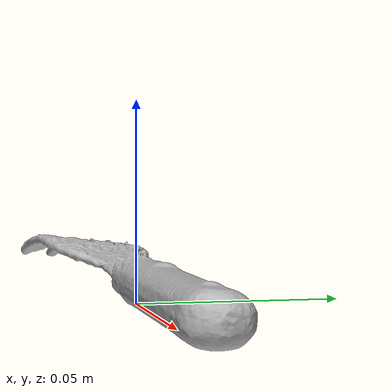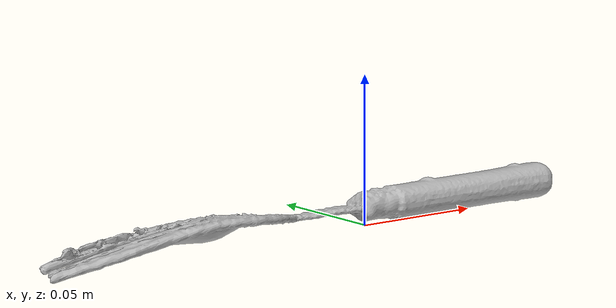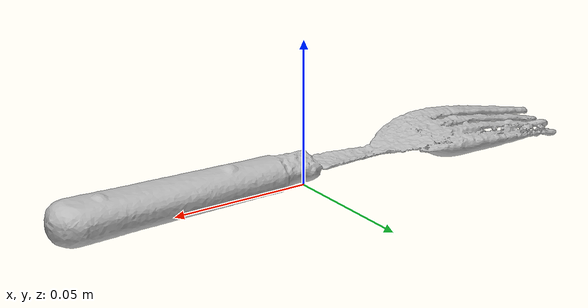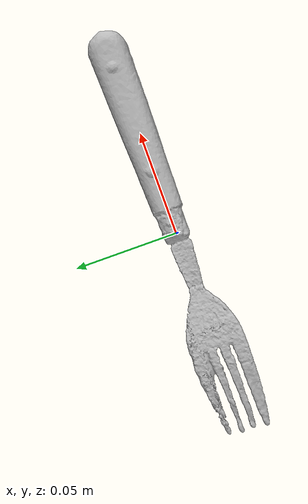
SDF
<?xml version="1.0" ?>
<sdf version='1.8'>
  <model name='ycb_030_fork'>
    <link name='body'>
      <inertial>
        <mass>0.034</mass>
        <pose>0.0334475616 0.000831887483 0.00691427429 0 0 0</pose>
        <inertia>
          <ixx>1.15216206502e-06</ixx>
          <ixy>8.22983124788e-08</ixy>
          <ixz>-1.0962197087e-06</ixz>
          <iyy>8.14007889025e-05</iyy>
          <iyz>6.44080059524e-08</iyz>
          <izz>8.18835433988e-05</izz>
        </inertia>
      </inertial>
      <visual name='ycb_030_fork_visual'>
        <pose>0.024948 0.022365 0.000205 0 0 0</pose>
        <geometry>
          <mesh>
            <uri>model://ycb_030_fork/meshes/textured.dae</uri>
          </mesh>
        </geometry>
      </visual>
      <collision name='ycb_030_fork_collision'>
        <pose>0.024948 0.022365 0.000205 0 0 0</pose>
        <geometry>
          <mesh>
            <uri>model://ycb_030_fork/meshes/nontextured.stl</uri>
          </mesh>
        </geometry>
        <max_contacts>10</max_contacts>
        <surface>
          <contact>
            <ode>
              <kp>1e15</kp>
              <kd>1e13</kd>
            </ode>
          </contact>
        </surface>
      </collision>
    </link>
  </model>
</sdf>
